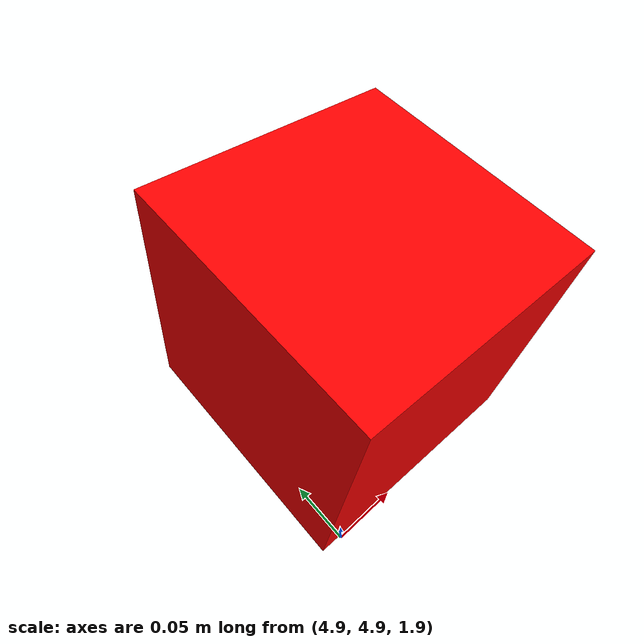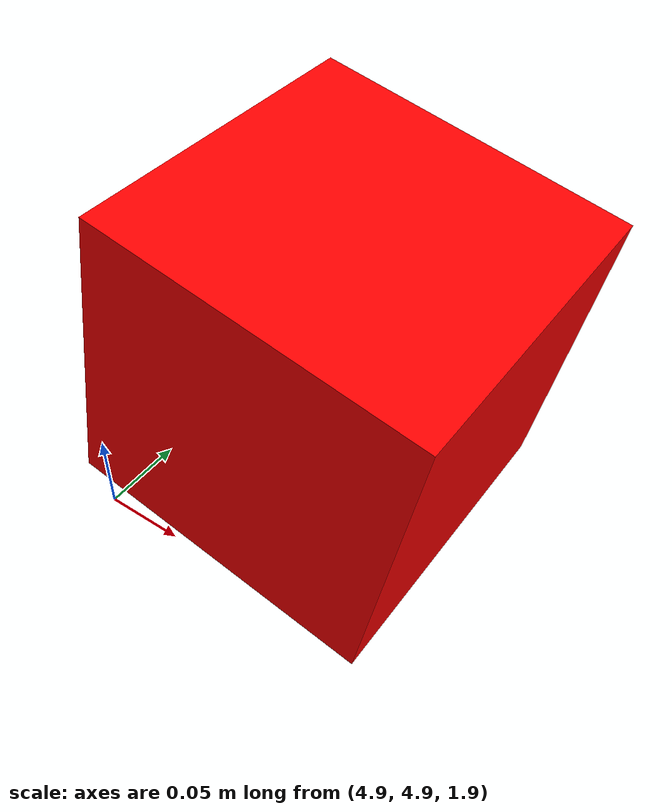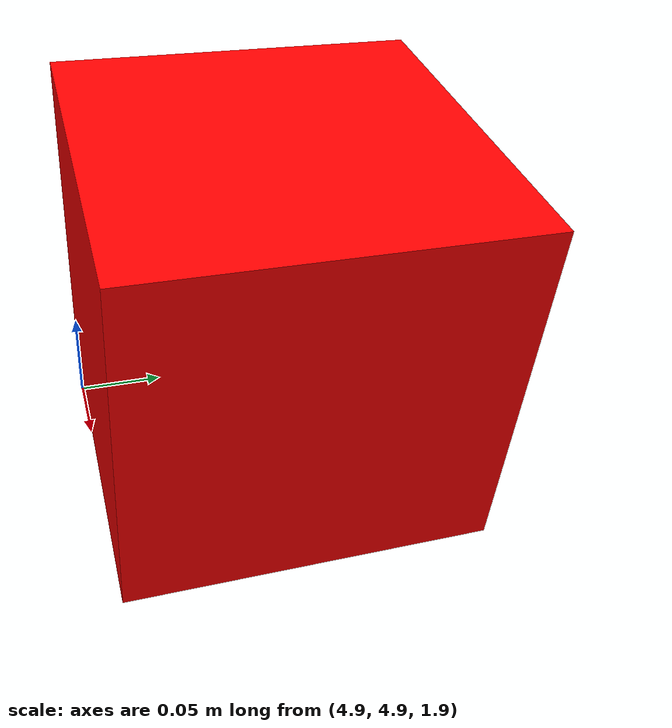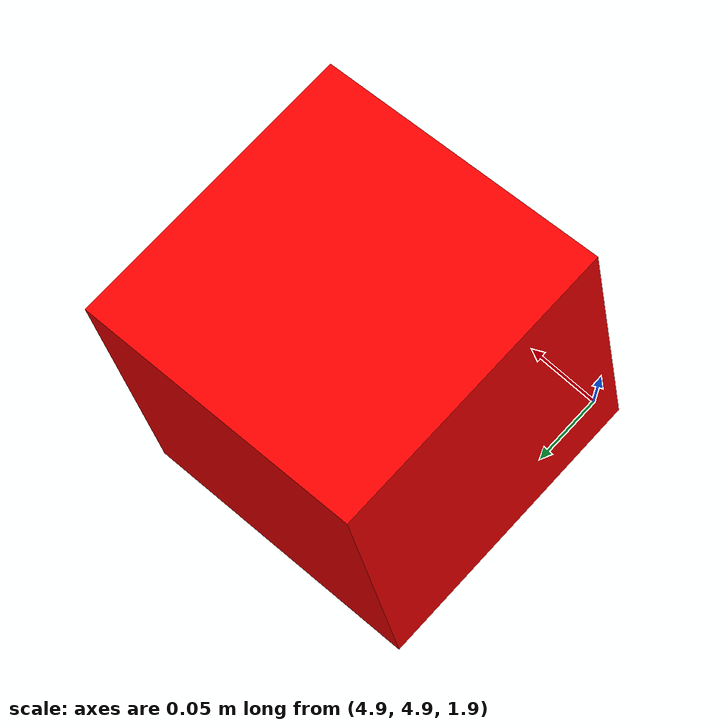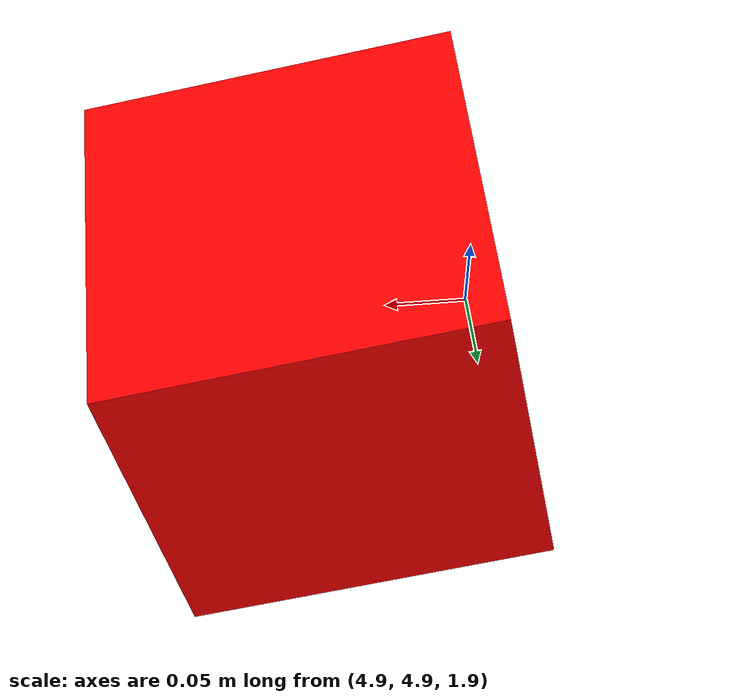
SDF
<?xml version="1.0" ?>
<sdf version="1.9">
  <world name="industrial_inspection_world">

    <physics name="1ms" type="dart">
      <max_step_size>0.001</max_step_size>
      <real_time_factor>1.0</real_time_factor>
    </physics>

    <plugin filename="ignition-gazebo-sensors-system" name="ignition::gazebo::systems::Sensors">
      <render_engine>ogre2</render_engine>
    </plugin>

    <light type="directional" name="sun">
      <cast_shadows>true</cast_shadows>
      <pose>0 0 10 0 0 0</pose>
      <diffuse>0.8 0.8 0.8 1</diffuse>
      <specular>0.2 0.2 0.2 1</specular>
      <direction>-0.5 0.1 -0.9</direction>
    </light>

    <model name="amr_inspection_facility">
      <include>
        <uri>model://amr_inspection_facility/model.sdf</uri>
        <pose>0 0 0 0 0 0</pose>
      </include>
    </model>

    <model name="thermal_camera_tester">
      <pose>5 5 2 0 0.2 0</pose>
      <static>false</static>
      <link name="link">
        <kinematic>true</kinematic> <gravity>false</gravity>

        <inertial>
          <mass>0.5</mass>
          <inertia>
            <ixx>0.001</ixx>
            <iyy>0.001</iyy>
            <izz>0.001</izz>
          </inertia>
        </inertial>

        <visual name="camera_visual">
          <geometry>
            <box>
              <size>0.2 0.2 0.2</size>
            </box>
          </geometry>
          <material>
            <ambient>1 0 0 1</ambient>
            <diffuse>1 0 0 1</diffuse>
          </material>
        </visual>

        <sensor name="thermal_camera" type="thermal">
          <camera>
            <horizontal_fov>1.047</horizontal_fov>
            <image>
              <width>640</width>
              <height>480</height>
              <format>R8G8B8</format>
            </image>
            <clip>
              <near>0.1</near>
              <far>100</far>
            </clip>
          </camera>
          <always_on>1</always_on>
          <update_rate>10</update_rate>
          <visualize>true</visualize>
          <topic>/thermal_camera/image</topic>
        </sensor>
      </link>
    </model>

    <plugin filename="gz-sim-scene-broadcaster-system" name="gz::sim::systems::SceneBroadcaster"/>
  </world>
</sdf>
